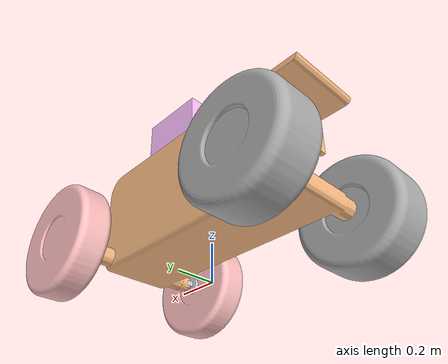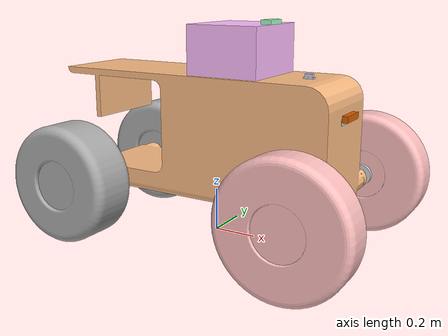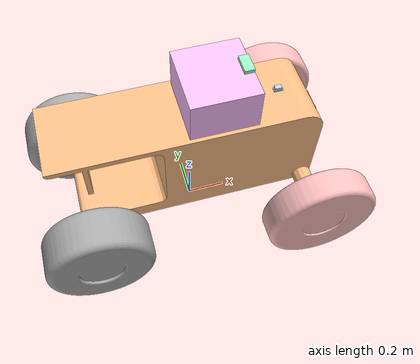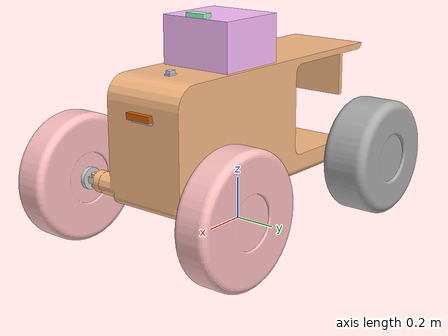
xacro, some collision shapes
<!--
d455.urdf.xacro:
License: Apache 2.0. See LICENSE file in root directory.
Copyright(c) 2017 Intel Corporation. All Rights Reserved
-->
<?xml version="1.0" encoding="utf-8"?>
<robot
  name="puma_model_3d" xmlns:xacro="http://ros.org/wiki/xacro">
  <xacro:include filename="$(find puma_model_3d)/urdf/puma_model_3d.gazebo.xacro"/>
  <xacro:include filename="$(find puma_model_3d)/urdf/d455.urdf.xacro" />

  <link
    name="base_link">
    <inertial>
      <origin
        xyz="0.141296862331666 2.9961026143388E-07 0.466484944427059"
        rpy="0 0 0" />
      <mass
        value="207.451310849294" />
      <inertia
        ixx="9.00039333891583"
        ixy="7.101788806165E-06"
        ixz="-0.960369831189879"
        iyy="26.4001764647089"
        iyz="1.75060582301368E-05"
        izz="23.097965703532" />
    </inertial>
    <visual>
      <origin
        xyz="0 0 0"
        rpy="0 0 0" />
      <geometry>
        <mesh
          filename="package://puma_model_3d/meshes/base_link.STL" />
      </geometry>
      <material
        name="">
        <color
          rgba="0.988235294117647 0.737254901960784 0.517647058823529 1" />
      </material>
    </visual>
    <collision>
      <origin
        xyz="0 0 0"
        rpy="0 0 0" />
      <geometry>
        <mesh
          filename="package://puma_model_3d/meshes/base_link.STL" />
      </geometry>
    </collision>
  </link>
  <link
    name="dir_right_link">
    <inertial>
      <origin
        xyz="-2.22044604925031E-16 -0.0294777193153578 1.11022302462516E-16"
        rpy="0 0 0" />
      <mass
        value="0.214607285846125" />
      <inertia
        ixx="0.000161787233745492"
        ixy="-1.25101536732731E-20"
        ixz="-1.72135905926183E-21"
        iyy="0.000212842937751498"
        iyz="1.1841558125888E-20"
        izz="0.000169651482672632" />
    </inertial>
    <visual>
      <origin
        xyz="0 0 0"
        rpy="0 0 0" />
      <geometry>
        <mesh
          filename="package://puma_model_3d/meshes/dir_right_link.STL" />
      </geometry>
      <material
        name="">
        <color
          rgba="0.823529411764706 0.823529411764706 0.823529411764706 1" />
      </material>
    </visual>
    <collision>
      <origin
        xyz="0 0 0"
        rpy="0 0 0" />
      <geometry>
        <mesh
          filename="package://puma_model_3d/meshes/dir_right_link.STL" />
      </geometry>
    </collision>
  </link>
  <joint
    name="dir_right_joint"
    type="continuous">
    <origin
      xyz="0.576729916214884 -0.337 0.265"
      rpy="0 0 0" />
    <parent
      link="base_link" />
    <child
      link="dir_right_link" />
    <axis
      xyz="0 0 1" />
  </joint>
  <link
    name="wheel_right_front_link">
    <inertial>
      <origin
        xyz="0 1.11022302462516E-16 0.0700000000000001"
        rpy="0 0 0" />
      <mass
        value="40.746899028908" />
      <inertia
        ixx="0.940114186286073"
        ixy="2.10269346059008E-32"
        ixz="6.51599441141691E-17"
        iyy="0.940114186286073"
        iyz="-1.4129129295913E-17"
        izz="1.71674100062734" />
    </inertial>
    <visual>
      <origin
        xyz="0 0 0"
        rpy="0 0 0" />
      <geometry>
        <mesh
          filename="package://puma_model_3d/meshes/wheel_right_front_link.STL" />
      </geometry>
      <material
        name="">
        <color
          rgba="1 0.752941176470588 0.752941176470588 1" />
      </material>
    </visual>
    <collision>
      <origin
        xyz="0 0 0"
        rpy="0 0 0" />
      <geometry>
        <mesh
          filename="package://puma_model_3d/meshes/wheel_right_front_link.STL" />
      </geometry>
    </collision>
  </link>
  <joint
    name="wheel_right_front_joint"
    type="continuous">
    <origin
      xyz="0 -0.048 0"
      rpy="1.5708 0 0" />
    <parent
      link="dir_right_link" />
    <child
      link="wheel_right_front_link" />
    <axis
      xyz="0 0 -1" />
    <dynamics
      friction="1" />
  </joint>
  <link
    name="dir_left_link">
    <inertial>
      <origin
        xyz="0 0.0294777193153578 1.11022302462516E-16"
        rpy="0 0 0" />
      <mass
        value="0.214607285846125" />
      <inertia
        ixx="0.000161787233745492"
        ixy="1.85933047820183E-21"
        ixz="-2.5363205724219E-21"
        iyy="0.000212842937751498"
        iyz="3.87148830366963E-20"
        izz="0.000169651482672632" />
    </inertial>
    <visual>
      <origin
        xyz="0 0 0"
        rpy="0 0 0" />
      <geometry>
        <mesh
          filename="package://puma_model_3d/meshes/dir_left_link.STL" />
      </geometry>
      <material
        name="">
        <color
          rgba="0.823529411764706 0.823529411764706 0.823529411764706 1" />
      </material>
    </visual>
    <collision>
      <origin
        xyz="0 0 0"
        rpy="0 0 0" />
      <geometry>
        <mesh
          filename="package://puma_model_3d/meshes/dir_left_link.STL" />
      </geometry>
    </collision>
  </link>
  <joint
    name="dir_left_joint"
    type="continuous">
    <origin
      xyz="0.576729916214884 0.337 0.265"
      rpy="0 0 0" />
    <parent
      link="base_link" />
    <child
      link="dir_left_link" />
    <axis
      xyz="0 0 1" />
  </joint>
  <link
    name="wheel_left_front_link">
    <inertial>
      <origin
        xyz="-1.1102E-16 0 0.07"
        rpy="0 0 0" />
      <mass
        value="40.747" />
      <inertia
        ixx="0.94011"
        ixy="6.9673E-32"
        ixz="-5.0825E-17"
        iyy="0.94011"
        iyz="1.0535E-17"
        izz="1.7167" />
    </inertial>
    <visual>
      <origin
        xyz="0 0 0"
        rpy="0 0 0" />
      <geometry>
        <mesh
          filename="package://puma_model_3d/meshes/wheel_left_front_link.STL" />
      </geometry>
      <material
        name="">
        <color
          rgba="1 0.75294 0.75294 1" />
      </material>
    </visual>
    <collision>
      <origin
        xyz="0 0 0"
        rpy="0 0 0" />
      <geometry>
        <mesh
          filename="package://puma_model_3d/meshes/wheel_left_front_link.STL" />
      </geometry>
    </collision>
  </link>
  <joint
    name="wheel_left_front_joint"
    type="continuous">
    <origin
      xyz="0 0.048 0"
      rpy="1.5708 0 -3.1416" />
    <parent
      link="dir_left_link" />
    <child
      link="wheel_left_front_link" />
    <axis
      xyz="0 0 -1" />
    <dynamics
      friction="1" />
  </joint>
  <link
    name="wheel_right_back_link">
    <inertial>
      <origin
        xyz="0 0 0.1"
        rpy="0 0 0" />
      <mass
        value="52.2180097677596" />
      <inertia
        ixx="1.20115503942524"
        ixy="-1.94634065542107E-32"
        ixz="8.91545953570273E-17"
        iyy="1.20115503942524"
        iyz="-3.53398723507262E-16"
        izz="1.97609087490016" />
    </inertial>
    <visual>
      <origin
        xyz="0 0 0"
        rpy="0 0 0" />
      <geometry>
        <mesh
          filename="package://puma_model_3d/meshes/wheel_right_back_link.STL" />
      </geometry>
      <material
        name="">
        <color
          rgba="0.666666666666667 0.666666666666667 0.666666666666667 1" />
      </material>
    </visual>
    <collision>
      <origin
        xyz="0 0 0"
        rpy="0 0 0" />
      <geometry>
        <mesh
          filename="package://puma_model_3d/meshes/wheel_right_back_link.STL" />
      </geometry>
    </collision>
  </link>
  <joint
    name="wheel_right_back_joint"
    type="continuous">
    <origin
      xyz="-0.57327 -0.275 0.25"
      rpy="1.5708 0 0" />
    <parent
      link="base_link" />
    <child
      link="wheel_right_back_link" />
    <axis
      xyz="0 0 -1" />
    <dynamics
      friction="1" />
  </joint>
  <link
    name="wheel_left_back_link">
    <inertial>
      <origin
        xyz="1.1102E-16 0 0.1"
        rpy="0 0 0" />
      <mass
        value="52.218" />
      <inertia
        ixx="1.2012"
        ixy="-3.8342E-33"
        ixz="-1.153E-18"
        iyy="1.2012"
        iyz="2.449E-17"
        izz="1.9761" />
    </inertial>
    <visual>
      <origin
        xyz="0 0 0"
        rpy="0 0 0" />
      <geometry>
        <mesh
          filename="package://puma_model_3d/meshes/wheel_left_back_link.STL" />
      </geometry>
      <material
        name="">
        <color
          rgba="0.66667 0.66667 0.66667 1" />
      </material>
    </visual>
    <collision>
      <origin
        xyz="0 0 0"
        rpy="0 0 0" />
      <geometry>
        <mesh
          filename="package://puma_model_3d/meshes/wheel_left_back_link.STL" />
      </geometry>
    </collision>
  </link>
  <joint
    name="wheel_left_back_joint"
    type="continuous">
    <origin
      xyz="-0.57327 0.275 0.25"
      rpy="-1.5708 0 0" />
    <parent
      link="base_link" />
    <child
      link="wheel_left_back_link" />
    <axis
      xyz="0 0 -1" />
    <dynamics
      friction="1" />
  </joint>
  <link
    name="base_component_link">
    <inertial>
      <origin
        xyz="-1.38777878078145E-17 0 0"
        rpy="0 0 0" />
      <mass
        value="26.928" />
      <inertia
        ixx="0.399432"
        ixy="2.11971551422607E-17"
        ixz="1.04083408558608E-17"
        iyy="0.368016"
        iyz="-6.36065274524829E-18"
        izz="0.5502288" />
    </inertial>
    <visual>
      <origin
        xyz="0 0 0"
        rpy="0 0 0" />
      <geometry>
        <mesh
          filename="package://puma_model_3d/meshes/base_component_link.STL" />
      </geometry>
      <material
        name="">
        <color
          rgba="1 0.752941176470588 1 1" />
      </material>
    </visual>
    <collision>
      <origin
        xyz="0 0 0"
        rpy="0 0 0" />
      <geometry>
        <mesh
          filename="package://puma_model_3d/meshes/base_component_link.STL" />
      </geometry>
    </collision>
  </link>
  <joint
    name="base_component_joint"
    type="fixed">
    <origin
      xyz="0.12673 0 0.87"
      rpy="0 0 0" />
    <parent
      link="base_link" />
    <child
      link="base_component_link" />
    <axis
      xyz="0 0 0" />
  </joint>
  <link
    name="gps_link">
    <inertial>
      <origin
        xyz="0 0 -0.01"
        rpy="0 0 0" />
      <mass
        value="0.1" />
      <inertia
        ixx="8.66666666666667E-05"
        ixy="1.60145695894214E-21"
        ixz="-1.10678971774561E-22"
        iyy="2.41666666666667E-05"
        iyz="2.70372916763569E-22"
        izz="0.000104166666666667" />
    </inertial>
    <visual>
      <origin
        xyz="0 0 0"
        rpy="0 0 0" />
      <geometry>
        <mesh
          filename="package://puma_model_3d/meshes/gps_link.STL" />
      </geometry>
      <material
        name="">
        <color
          rgba="0.623529411764706 1 0.76078431372549 1" />
      </material>
    </visual>
    <collision>
      <origin
        xyz="0 0 0"
        rpy="0 0 0" />
      <geometry>
        <mesh
          filename="package://puma_model_3d/meshes/gps_link.STL" />
      </geometry>
    </collision>
  </link>
  <joint
    name="gps_joint"
    type="fixed">
    <origin
      xyz="0.27173 0 1"
      rpy="0 0 0" />
    <parent
      link="base_link" />
    <child
      link="gps_link" />
    <axis
      xyz="0 0 0" />
  </joint>
  <link
    name="imu_link">
    <inertial>
      <origin
        xyz="5.08055300274535E-07 -0.000195569944066165 -0.0121628383871961"
        rpy="0 0 0" />
      <mass
        value="0.0106550387325199" />
      <inertia
        ixx="1.16705248203446E-06"
        ixy="2.0325615840463E-11"
        ixz="2.11642113824978E-12"
        iyy="2.20541869708663E-06"
        iyz="-8.14691556822172E-10"
        izz="2.78315231388434E-06" />
    </inertial>
    <visual>
      <origin
        xyz="0 0 0"
        rpy="0 0 0" />
      <geometry>
        <mesh
          filename="package://puma_model_3d/meshes/imu_link.STL" />
      </geometry>
      <material
        name="">
        <color
          rgba="0.792156862745098 0.819607843137255 0.933333333333333 1" />
      </material>
    </visual>
    <collision>
      <origin
        xyz="0 0 0"
        rpy="0 0 0" />
      <geometry>
        <mesh
          filename="package://puma_model_3d/meshes/imu_link.STL" />
      </geometry>
    </collision>
  </link>
  <joint
    name="imu_joint"
    type="fixed">
    <origin
      xyz="0.45373 0.003 0.781"
      rpy="0 0 0" />
    <parent
      link="base_link" />
    <child
      link="imu_link" />
    <axis
      xyz="0 0 0" />
  </joint>
  <link
    name="camara_link">
    <inertial>
      <origin
        xyz="-0.0015 2.7756E-17 0"
        rpy="0 0 0" />
      <mass
        value="0.01053" />
      <inertia
        ixx="1.3619E-05"
        ixy="-4.0724E-23"
        ixz="-3.8481E-24"
        iyy="7.243E-07"
        iyz="5.8707E-22"
        izz="1.291E-05" />
    </inertial>
    <visual>
      <origin
        xyz="0 0 0"
        rpy="0 0 0" />
      <geometry>
        <mesh
          filename="package://puma_model_3d/meshes/camara_link.STL" />
      </geometry>
      <material
        name="">
        <color
          rgba="0.79216 0.81961 0.93333 1" />
      </material>
    </visual>
    <collision>
      <origin
        xyz="0 0 0"
        rpy="0 0 0" />
      <geometry>
        <mesh
          filename="package://puma_model_3d/meshes/camara_link.STL" />
      </geometry>
    </collision>
  </link>
  <joint
    name="camara_joint"
    type="fixed">
    <origin
      xyz="0.62973 0 0.6"
      rpy="0 0 0" />
    <parent
      link="base_link" />
    <child
      link="camara_link" />
    <axis
      xyz="0 0 0" />
  </joint>
  <link
    name="camara_trasera_link">
    <inertial>
      <origin
        xyz="-0.0015 1.3878E-17 0"
        rpy="0 0 0" />
      <mass
        value="0.01053" />
      <inertia
        ixx="1.3619E-05"
        ixy="-3.3764E-23"
        ixz="-1.4971E-23"
        iyy="7.243E-07"
        iyz="-9.5827E-21"
        izz="1.291E-05" />
    </inertial>
    <visual>
      <origin
        xyz="0 0 0"
        rpy="0 0 0" />
      <geometry>
        <mesh
          filename="package://puma_model_3d/meshes/camara_link.STL" />
      </geometry>
      <material
        name="">
        <color
          rgba="0.79216 0.81961 0.93333 1" />
      </material>
    </visual>
    <collision>
      <origin
        xyz="0 0 0"
        rpy="0 0 0" />
      <geometry>
        <mesh
          filename="package://puma_model_3d/meshes/camara_link.STL" />
      </geometry>
    </collision>
  </link>
  <joint
    name="camara_trasera_joint"
    type="fixed">
    <origin
      xyz="-0.55627 0 0.64"
      rpy="0 0 3.1416" />
    <parent
      link="base_link" />
    <child
      link="camara_trasera_link" />
    <axis
      xyz="0 0 0" />
  </joint>

  <xacro:sensor_d455 parent="camara_link" use_nominal_extrinsics="true" add_plug="false" name="camera_front" topics_ns="puma/sensors/camera_front" publish_pointcloud="true">
    <origin xyz="0.01 0 0" rpy="0 0 0"/>
  </xacro:sensor_d455>

  <xacro:sensor_d455 parent="camara_trasera_link" use_nominal_extrinsics="true" add_plug="false" name="camera_rear" topics_ns="puma/sensors/camera_rear" publish_pointcloud="true">
    <origin xyz="0.01 0 0" rpy="0 0 0"/>
  </xacro:sensor_d455>
</robot>

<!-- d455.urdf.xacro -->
<robot name="sensor_d455" xmlns:xacro="http://ros.org/wiki/xacro">
  <!-- Includes -->
  <xacro:include filename="$(find puma_model_3d)/urdf/d455.gazebo.xacro" />
  <xacro:include filename="$(find puma_model_3d)/urdf/_materials.urdf.xacro" />
  <xacro:include filename="$(find puma_model_3d)/urdf/_usb_plug.urdf.xacro" />

  <xacro:macro name="sensor_d455" params="parent *origin name:=camera use_nominal_extrinsics:=false add_plug:=false topics_ns:=camera publish_pointcloud:=true">
    <xacro:arg name="add_plug" default="false" />
    <xacro:property name="M_PI" value="3.1415926535897931" />

    <!-- The following values are approximate, and the camera node
     publishing TF values with actual calibrated camera extrinsic values -->
    <xacro:property name="d455_cam_depth_to_infra1_offset" value="0.0"/>
    <xacro:property name="d455_cam_depth_to_infra2_offset" value="-0.095"/>
    <xacro:property name="d455_cam_depth_to_color_offset" value="-0.059"/>

    <!-- The following values model the aluminum peripherial case for the
  	d455 camera, with the camera joint represented by the actual
  	peripherial camera tripod mount -->
    <xacro:property name="d455_cam_width" value="0.124"/>
    <xacro:property name="d455_cam_height" value="0.029"/>
    <xacro:property name="d455_cam_depth" value="0.026"/>
    <xacro:property name="d455_cam_mount_from_center_offset" value="0.0158"/>
    <!-- glass cover is 0.1 mm inwards from front aluminium plate -->
    <xacro:property name="d455_glass_to_front" value="0.1e-3"/>
    <!-- see datasheet Revision 009, Fig. 4-4 page 68 -->
    <xacro:property name="d455_zero_depth_to_glass" value="4.55e-3"/>
    <!-- convenience precomputation to avoid clutter-->
    <xacro:property name="d455_mesh_x_offset" value="${d455_cam_mount_from_center_offset-d455_glass_to_front-d455_zero_depth_to_glass}"/>

    <!-- The following offset is relative to the physical d455 camera peripherial
  	camera tripod mount -->
    <xacro:property name="d455_cam_depth_px" value="${d455_cam_mount_from_center_offset}"/>
    <xacro:property name="d455_cam_depth_py" value="0.0475"/>
    <xacro:property name="d455_cam_depth_pz" value="${d455_cam_height/2}"/>

    <!-- camera body, with origin at bottom screw mount -->
    <joint name="${name}_joint" type="fixed">
      <xacro:insert_block name="origin" />
      <parent link="${parent}"/>
      <child link="${name}_bottom_screw_frame" />
    </joint>
    <link name="${name}_bottom_screw_frame"/>

    <joint name="${name}_link_joint" type="fixed">
      <origin xyz="${d455_mesh_x_offset} ${d455_cam_depth_py} ${d455_cam_depth_pz}" rpy="0 0 0"/>
      <parent link="${name}_bottom_screw_frame"/>
      <child link="${name}_link" />
    </joint>

    <link name="${name}_link">
      <visual>
        <!-- the mesh origin is at front plate in between the two infrared camera axes -->
        <origin xyz="${d455_zero_depth_to_glass + d455_glass_to_front} ${-d455_cam_depth_py} 0" rpy="${M_PI/2} 0 ${M_PI/2}"/>
        <geometry>
	        <mesh filename="package://puma_model_3d/meshes/d455.stl" scale="0.001 0.001 0.001" />
        </geometry>
        <material name="aluminum"/>
      </visual>
      <collision>
        <origin xyz="${d455_zero_depth_to_glass-d455_cam_depth/2} ${-d455_cam_depth_py} 0" rpy="0 0 0"/>
        <geometry>
          <box size="${d455_cam_depth} ${d455_cam_width} ${d455_cam_height}"/>
        </geometry>
      </collision>
      <inertial>
        <!-- The following are not reliable values, and should not be used for modeling -->
        <mass value="0.072" />
        <origin xyz="0 0 0" />
        <inertia ixx="0.003881243" ixy="0.0" ixz="0.0" iyy="0.000498940" iyz="0.0" izz="0.003879257" />
      </inertial>
    </link>

    <!-- Use the nominal extrinsics between camera frames if the calibrated extrinsics aren't being published. e.g. running the device in simulation  -->
    <xacro:if value="${use_nominal_extrinsics}">
      <!-- camera depth joints and links -->
      <joint name="${name}_depth_joint" type="fixed">
        <origin xyz="0 0 0" rpy="0 0 0"/>
        <parent link="${name}_link"/>
        <child link="${name}_depth_frame" />
      </joint>
      <link name="${name}_depth_frame"/>

      <joint name="${name}_depth_optical_joint" type="fixed">
        <origin xyz="0 0 0" rpy="${-M_PI/2} 0 ${-M_PI/2}" />
        <parent link="${name}_depth_frame" />
        <child link="${name}_depth_optical_frame" />
      </joint>
      <link name="${name}_depth_optical_frame"/>

      <!-- camera left IR joints and links -->
      <joint name="${name}_infra1_joint" type="fixed">
        <origin xyz="0 ${d455_cam_depth_to_infra1_offset} 0" rpy="0 0 0" />
        <parent link="${name}_link" />
        <child link="${name}_infra1_frame" />
      </joint>
      <link name="${name}_infra1_frame"/>

      <joint name="${name}_infra1_optical_joint" type="fixed">
        <origin xyz="0 0 0" rpy="${-M_PI/2} 0 ${-M_PI/2}" />
        <parent link="${name}_infra1_frame" />
        <child link="${name}_infra1_optical_frame" />
      </joint>
      <link name="${name}_infra1_optical_frame"/>

      <!-- camera right IR joints and links -->
      <joint name="${name}_infra2_joint" type="fixed">
        <origin xyz="0 ${d455_cam_depth_to_infra2_offset} 0" rpy="0 0 0" />
        <parent link="${name}_link" />
        <child link="${name}_infra2_frame" />
      </joint>
      <link name="${name}_infra2_frame"/>

      <joint name="${name}_infra2_optical_joint" type="fixed">
        <origin xyz="0 0 0" rpy="${-M_PI/2} 0 ${-M_PI/2}" />
        <parent link="${name}_infra2_frame" />
        <child link="${name}_infra2_optical_frame" />
      </joint>
      <link name="${name}_infra2_optical_frame"/>

      <!-- camera color joints and links -->
      <joint name="${name}_color_joint" type="fixed">
        <origin xyz="0 ${d455_cam_depth_to_color_offset} 0" rpy="0 0 0" />
        <parent link="${name}_link" />
        <child link="${name}_color_frame" />
      </joint>
      <link name="${name}_color_frame"/>

      <joint name="${name}_color_optical_joint" type="fixed">
        <origin xyz="0 0 0" rpy="${-M_PI/2} 0 ${-M_PI/2}" />
        <parent link="${name}_color_frame" />
        <child link="${name}_color_optical_frame" />
      </joint>
      <link name="${name}_color_optical_frame"/>

      <!-- IMU -->
      <!-- see datasheet Revision 009, page 114 -->
      <xacro:property name="d455_imu_px" value="-0.01602"/>
      <xacro:property name="d455_imu_py" value="-0.03022"/>
      <xacro:property name="d455_imu_pz" value="+0.0074"/>

      <link name="${name}_accel_frame" />
      <link name="${name}_accel_optical_frame" />
      <link name="${name}_gyro_frame" />
      <link name="${name}_gyro_optical_frame" />
      <link name="${name}_imu_optical_frame" />

      <joint name="${name}_accel_joint" type="fixed">
        <origin xyz = "${d455_imu_px} ${d455_imu_py} ${d455_imu_pz}" rpy = "0 0 0" />
        <parent link="${name}_link" />
        <child link="${name}_accel_frame" />
      </joint>

      <joint name="${name}_accel_optical_joint" type="fixed">
        <origin xyz = "0 0 0" rpy = "${-M_PI/2} 0 ${-M_PI/2}" />
        <parent link="${name}_accel_frame" />
        <child link="${name}_accel_optical_frame" />
      </joint>

      <joint name="${name}_gyro_joint" type="fixed">
        <origin xyz = "${d455_imu_px} ${d455_imu_py} ${d455_imu_pz}" rpy = "0 0 0" />
        <parent link="${name}_link" />
        <child link="${name}_gyro_frame" />
      </joint>

      <joint name="${name}_gyro_optical_joint" type="fixed">
        <origin xyz = "0 0 0" rpy = "${-M_PI/2} 0 ${-M_PI/2}" />
        <parent link="${name}_gyro_frame" />
        <child link="${name}_gyro_optical_frame" />
      </joint>

      <joint name="${name}_imu_optical_joint" type="fixed">
        <origin xyz = "0 0 0" rpy = "0 0 0" />
        <parent link="${name}_gyro_optical_frame" />
        <child link="${name}_imu_optical_frame" />
      </joint>
    </xacro:if>

    <xacro:if value="$(arg add_plug)">
      <xacro:usb_plug parent="${name}_link" name="${name}_usb_plug">
        <origin xyz="${-0.00406-d455_cam_depth_px} ${-0.03701-d455_cam_depth_py} ${-d455_cam_depth_pz}" rpy="${M_PI/2} 0 0"/>
      </xacro:usb_plug>
    </xacro:if>

    <!-- Realsense Gazebo Plugin -->
    <xacro:gazebo_d455 camera_name="${name}" reference_link="${name}_link" topics_ns="${topics_ns}" depth_optical_frame="${name}_depth_optical_frame" color_optical_frame="${name}_color_optical_frame" infrared1_optical_frame="${name}_left_ir_optical_frame" infrared2_optical_frame="${name}_right_ir_optical_frame" publish_pointcloud="${publish_pointcloud}"/>

  </xacro:macro>
</robot>
